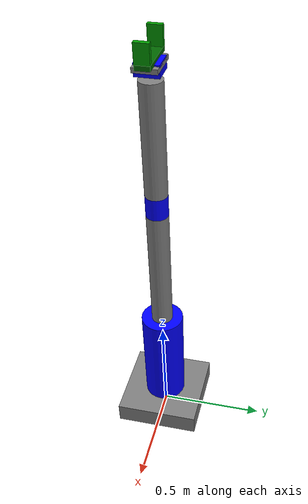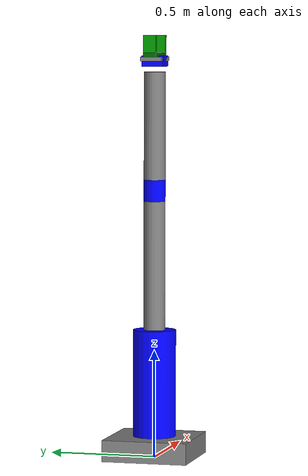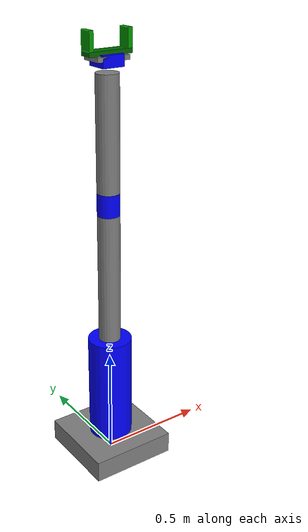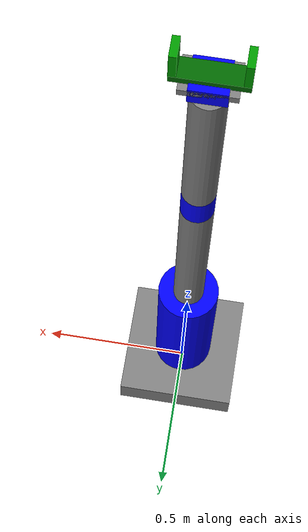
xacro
<?xml version="1.0"?>
<robot xmlns:xacro="http://www.ros.org/wiki/xacro" name="kxsmoveit_robot">
    <xacro:arg name="initial_positions_file" default="initial_positions.yaml" />

    <!-- Import kxsmoveit_robot urdf file -->
    <xacro:include filename="$(find kxsmoveit_robot_description)/urdf/kxsmoveit_robot.urdf.xacro" />

    <!-- Import control_xacro -->
    <xacro:include filename="kxsmoveit_robot.ros2_control.xacro" />

    <xacro:kxsmoveit_robot_ros2_control name="FakeSystem" initial_positions_file="$(arg initial_positions_file)"/>

</robot>

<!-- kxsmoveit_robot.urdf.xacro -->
<robot name="kxsmoveit_robot" xmlns:xacro="http://ros.org/wiki/xacro">

    <xacro:include filename="common_properties.xacro"/>
    <xacro:include filename="arm.xacro"/>
    <xacro:include filename="gripper.xacro"/>

    <joint name="gripper_base_joint" type="fixed">
        <parent link="tool_link"/>
        <child link="gripper_base_link"/>
        <origin xyz="0 0 0.0" rpy="0 0 0"/>
    </joint>

</robot>

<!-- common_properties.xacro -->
<robot xmlns:xacro="http://ros.org/wiki/xacro">

    <material name="grey">
    <color rgba="0.5 0.5 0.5 1.0"/>
    </material>

    <material name="blue">
        <color rgba="0.0 0.0 1.0 1.0"/>
    </material>

    <material name="dark_green">
        <color rgba="0.0 0.4 0.0 1.0"/>
    </material>

    <material name="light_green">
        <color rgba="0.0 0.6 0.0 1.0"/>
    </material>

</robot>

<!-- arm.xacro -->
<robot xmlns:xacro="http://ros.org/wiki/xacro">

    <link name="base_link">
        <visual>
            <geometry>
                <box size="0.4 0.4 0.1"/>
            </geometry>
            <origin xyz="0 0 0.05" rpy="0 0 0"/>
            <material name="grey"/>
        </visual>
        <collision>
            <geometry>
                <box size="0.4 0.4 0.1"/>
            </geometry>
            <origin xyz="0 0 0.05" rpy="0 0 0"/>
        </collision>
    </link>

    <joint name="joint1" type="revolute">
        <parent link="base_link"/>
        <child link="shoulder_link"/>
        <origin xyz="0 0 0.1" rpy="0 0 0"/>
        <axis xyz="0 0 1"/>
        <limit effort="1000.0" velocity="1.0" lower="-3.14" upper="3.14"/>
    </joint>

    <link name="shoulder_link">
        <visual>
            <geometry>
                <cylinder length="0.5" radius="0.1"/>
            </geometry>
            <origin xyz="0 0 0.25" rpy="0 0 0"/>
            <material name="blue"/>
        </visual>
        <collision>
            <geometry>
                <box size="0.2 0.2 0.5"/>
            </geometry>
            <origin xyz="0 0 0.25" rpy="0 0 0"/>
        </collision>
    </link>

    <joint name="joint2" type="revolute">
        <parent link="shoulder_link"/>
        <child link="arm_link"/>
        <origin xyz="0 0 0.5" rpy="0 0 0"/>
        <axis xyz="0 1 0"/>
        <limit effort="1000.0" velocity="1.0" lower="0" upper="2.5"/>
    </joint>

    <link name="arm_link">
        <visual>
            <geometry>
                <cylinder length="0.6" radius="0.05"/>
            </geometry>
            <origin xyz="0 0 0.3" rpy="0 0 0"/>
            <material name="grey"/>
        </visual>
        <collision>
            <geometry>
                <cylinder length="0.6" radius="0.05"/>
            </geometry>
            <origin xyz="0 0 0.3" rpy="0 0 0"/>
        </collision>
    </link>

    <joint name="joint3" type="revolute">
        <parent link="arm_link"/>
        <child link="elbow_link"/>
        <origin xyz="0 0 0.6" rpy="0 0 0"/>
        <axis xyz="0 1 0"/>
        <limit effort="1000.0" velocity="1.0" lower="0" upper="2.5"/>
    </joint>

    <link name="elbow_link">
        <visual>
            <geometry>
                <cylinder length="0.1" radius="0.05"/>
            </geometry>
            <origin xyz="0 0 0.05" rpy="0 0 0"/>
            <material name="blue"/>
        </visual>
        <collision>
            <geometry>
                <cylinder length="0.1" radius="0.05"/>
            </geometry>
            <origin xyz="0 0 0.05" rpy="0 0 0"/>
        </collision>
    </link>

    <joint name="joint4" type="revolute">
        <parent link="elbow_link"/>
        <child link="forearm_link"/>
        <origin xyz="0 0 0.1" rpy="0 0 0"/>
        <axis xyz="0 0 1"/>
        <limit effort="1000.0" velocity="1.0" lower="-3.14" upper="3.14"/>
    </joint>

    <link name="forearm_link">
        <visual>
            <geometry>
                <cylinder length="0.5" radius="0.05"/>
            </geometry>
            <origin xyz="0 0 0.25" rpy="0 0 0"/>
            <material name="grey"/>
        </visual>
        <collision>
            <geometry>
                <cylinder length="0.5" radius="0.05"/>
            </geometry>
            <origin xyz="0 0 0.25" rpy="0 0 0"/>
        </collision>
    </link>

    <joint name="joint5" type="revolute">
        <parent link="forearm_link"/>
        <child link="wrist_link"/>
        <origin xyz="0 0 0.5" rpy="0 0 0"/>
        <axis xyz="0 1 0"/>
        <limit effort="1000.0" velocity="1.0" lower="-1.57" upper="1.57"/>
    </joint>

    <link name="wrist_link">
        <visual>
            <geometry>
                <box size="0.1 0.1 0.05"/>
            </geometry>
            <origin xyz="0 0 0.05" rpy="0 0 0"/>
            <material name="blue"/>
        </visual>
        <collision>
            <geometry>
                <box size="0.1 0.1 0.05"/>
            </geometry>
            <origin xyz="0 0 0.05" rpy="0 0 0"/>
        </collision>
    </link>

    <joint name="joint6" type="continuous">
        <parent link="wrist_link"/>
        <child link="hand_link"/>
        <origin xyz="0 0 0.05" rpy="0 0 0"/>
        <axis xyz="0 0 1"/>
    </joint>

    <link name="hand_link">
        <visual>
            <geometry>
                <box size="0.15 0.1 0.02"/>
            </geometry>
            <origin xyz="0 0 0.01" rpy="0 0 0"/>
            <material name="grey"/>
        </visual>
        <collision>
            <geometry>
                <box size="0.15 0.1 0.02"/>
            </geometry>
            <origin xyz="0 0 0.01" rpy="0 0 0"/>
        </collision>
    </link>

    <joint name="hand_tool_joint" type="fixed">
        <parent link="hand_link"/>
        <child link="tool_link"/>
        <origin xyz="0 0 0.02" rpy="0 0 0"/>
    </joint>

    <link name="tool_link"/>

</robot>

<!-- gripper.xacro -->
<robot xmlns:xacro="http://ros.org/wiki/xacro">

    <link name="gripper_base_link">
        <visual>
            <geometry>
                <box size="0.2 0.06 0.02"/>
            </geometry>
            <origin xyz="0 0 0.01" rpy="0 0 0"/>
            <material name="dark_green"/>
        </visual>
        <collision>
            <geometry>
                <box size="0.2 0.06 0.02"/>
            </geometry>
            <origin xyz="0 0 0.01" rpy="0 0 0"/>
        </collision>
    </link>

    <joint name="gripper_left_finger_joint" type="prismatic">
        <parent link="gripper_base_link"/>
        <child link="gripper_left_finger_link"/>
        <origin xyz="-0.09 0 0.02" rpy="0 0 0"/>
        <axis xyz="1 0 0"/>
        <limit lower="0.0" upper="0.06" effort="1000" velocity="1.0"/>
    </joint>

    <link name="gripper_left_finger_link">
        <visual>
            <geometry>
                <box size="0.02 0.06 0.08"/>
            </geometry>
            <origin xyz="0 0 0.04" rpy="0 0 0"/>
            <material name="light_green"/>
        </visual>
        <collision>
            <geometry>
                <box size="0.02 0.06 0.08"/>
            </geometry>
            <origin xyz="0 0 0.04" rpy="0 0 0"/>
        </collision>
    </link>

    <joint name="gripper_right_finger_joint" type="prismatic">
        <parent link="gripper_base_link"/>
        <child link="gripper_right_finger_link"/>
        <origin xyz="0.09 0 0.02" rpy="0 0 0"/>
        <axis xyz="1 0 0"/>
        <mimic joint="gripper_left_finger_joint" multiplier="-1.0" offset="0"/>
        <limit lower="0.0" upper="0.06" effort="1000" velocity="1.0"/>
    </joint>

    <link name="gripper_right_finger_link">
        <visual>
            <geometry>
                <box size="0.02 0.06 0.08"/>
            </geometry>
            <origin xyz="0 0 0.04" rpy="0 0 0"/>
            <material name="light_green"/>
        </visual>
        <collision>
            <geometry>
                <box size="0.02 0.06 0.08"/>
            </geometry>
            <origin xyz="0 0 0.04" rpy="0 0 0"/>
        </collision>
    </link>

</robot>
